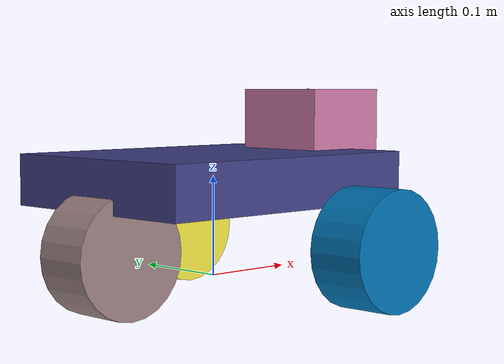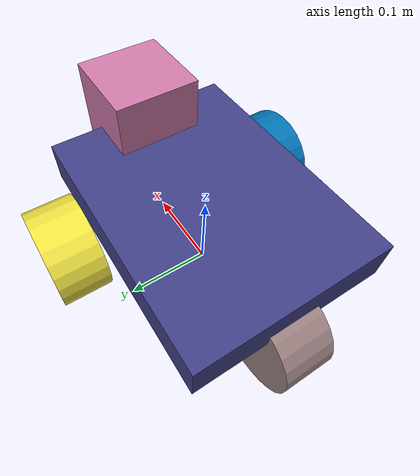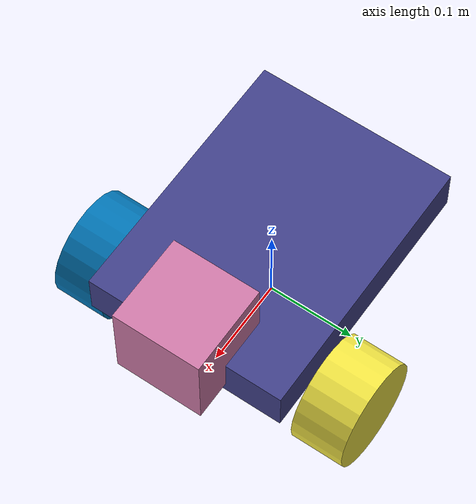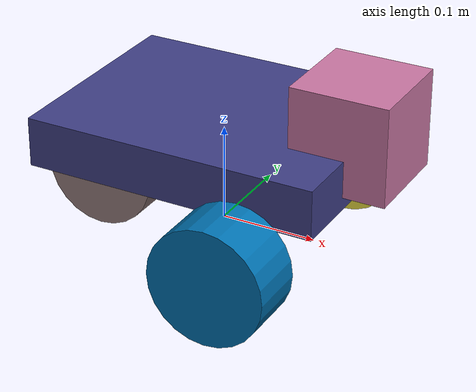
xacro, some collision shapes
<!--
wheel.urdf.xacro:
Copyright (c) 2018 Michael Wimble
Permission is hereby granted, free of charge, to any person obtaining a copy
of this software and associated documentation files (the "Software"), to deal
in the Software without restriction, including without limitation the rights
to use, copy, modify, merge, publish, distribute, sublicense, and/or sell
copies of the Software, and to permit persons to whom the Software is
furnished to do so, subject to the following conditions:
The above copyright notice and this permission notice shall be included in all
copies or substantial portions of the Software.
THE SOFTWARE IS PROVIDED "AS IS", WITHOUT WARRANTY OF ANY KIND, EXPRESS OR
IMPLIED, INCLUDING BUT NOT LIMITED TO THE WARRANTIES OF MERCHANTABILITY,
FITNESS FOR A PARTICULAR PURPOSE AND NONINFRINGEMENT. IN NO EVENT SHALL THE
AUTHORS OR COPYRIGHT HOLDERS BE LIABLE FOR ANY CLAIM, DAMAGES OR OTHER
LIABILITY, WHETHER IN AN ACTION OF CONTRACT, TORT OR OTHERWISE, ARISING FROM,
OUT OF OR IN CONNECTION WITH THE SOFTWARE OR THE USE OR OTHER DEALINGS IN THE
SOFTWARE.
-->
<?xml version="1.0"?>
<robot xmlns:xacro="http://ros.org/wiki/xacro" name="nadie">

  <xacro:arg name="robot_namespace" default="/nadie" />

  <xacro:include filename="$(find nadie_control)/urdf/caster.urdf.xacro" />
  <xacro:include filename="$(find nadie_control)/urdf/wheel.urdf.xacro" />
  <!--xacro:include filename="$(find nadie_control)/urdf/lidar_sim.xacro" /-->

  <xacro:property name="M_PI" value="3.14159"/>
  <xacro:property name="wheel_vertical_offset" value="0.03282" />

  <xacro:property name="body_height" value="0.0508" />
  <xacro:property name="body_length" value="0.3048" />
  <xacro:property name="body_width" value="0.2286" />
  <xacro:property name="fwheel_offset" value="-0.13" />
  <xacro:property name="wheel_forward_of_center_distance" value=".0762" />
  <xacro:property name="motor_height" value="0.0254" />
  <xacro:property name="lidar_height" value="0.015" />
  <xacro:property name="lidar_length" value="0.045" />
  <xacro:property name="lidar_width" value="0.015" />
  <xacro:property name="wheel_radius" value="0.06" />
  <xacro:property name="wheel_spacer" value="0.00254" />
  <xacro:property name="wheel_width" value="0.060" />
  <xacro:property name="body_center_height" value="${wheel_radius+(motor_height/2)+(body_height/2)}" />

  <xacro:property name="lidar_x_offset" value="${(body_length/2)-(lidar_width/2)}" />
  <xacro:property name="lidar_z_offset" value="${body_center_height+(body_height/2)+(lidar_height/2)+.00508}" />

  <material name="base">
    <color rgba="0.25 0.25 0.53 1" />>
  </material>

  <material name="wheel">
    <color rgba="0.6 0.5 0.5 1" />
  </material>

  <!--xacro:include filename="$(find m1)/robots/m1.gazebo" /-->
  <gazebo>
    <plugin name="gazebo_ros_control" filename="libgazebo_ros_control.so">
      <!-- controlPeriod defaults to parent_model_->GetWorld()->Physics()->GetMaxStepSize() -->
      <!-- eStopTopic if specified, subscribe to this topic and capture 'data' value -->
      <legacyModeNS>false</legacyModeNS> <!-- If using DefaultRobotHWSim, set this to "true" to fix namespace issue -->
      <robotNamespace>$(arg robot_namespace)</robotNamespace> <!-- parent_model_->GetName() -->
      <!-- robot_description -->
      <!-- gazebo_ros_control/DefaultRobotHWSim, which becomes the controller manager -->
    </plugin>

  </gazebo>

  <!-- Parts -->
  <link name="base_link">
    <collision>
      <geometry>
        <box size="${body_length} ${body_width} 0.0508"/>
      </geometry>
      <origin rpy="0 0 0" xyz="0 0 ${body_center_height}"/>
    </collision>
    <visual>
      <geometry>
        <box size="${body_length} ${body_width} 0.0508"/>
      </geometry>
      <material name="base" />
      <origin rpy="0 0 0" xyz="0 0 ${body_center_height}"/>
    </visual>
    <inertial>
        <origin xyz="0 0 0" rpy="0 0 0" />
        <mass value="1" />
        <inertia
          ixx="1.0" ixy="0.0" ixz="0.0"
          iyy="1.0" iyz="0.0"
          izz="1.0" />
    </inertial>
  </link>

  <!-- Base footprint is on the ground under the robot -->
  <link name="base_footprint"/>

  <joint name="base_footprint_joint" type="fixed">
    <origin xyz="0 0 ${wheel_vertical_offset - wheel_radius}" rpy="0 0 0" />
    <parent link="base_link" />
    <child link="base_footprint" />
  </joint>

  <!-- Interial link stores the robot's inertial information -->
  <link name="inertial_link">
    <inertial>
      <mass value="46.034" />
      <origin xyz="-0.00065 -0.085 0.062" />
      <inertia ixx="0.6022" ixy="-0.02364" ixz="-0.1197" iyy="1.7386" iyz="-0.001544" izz="2.0296" />
    </inertial>
  </link>

  <joint name="inertial_joint" type="fixed">
    <origin xyz="0 0 0" rpy="0 0 0" />
    <parent link="base_link" />
    <child link="inertial_link" />
  </joint>

  <xacro:wheel wheel_prefix="front_left">
    <origin xyz="${wheel_forward_of_center_distance} ${(body_width/2)+wheel_spacer+(wheel_width/2)} ${wheel_vertical_offset}" rpy="0 0 0" />
  </xacro:wheel>
  <xacro:wheel wheel_prefix="front_right">
    <origin xyz="${wheel_forward_of_center_distance} -${(body_width/2)+wheel_spacer+(wheel_width/2)} ${wheel_vertical_offset}" rpy="0 0 0" />
  </xacro:wheel>
  <xacro:caster wheel_prefix="caster">
    <origin xyz="${fwheel_offset} 0 ${wheel_vertical_offset}" rpy="0 0 0" />
  </xacro:caster>

  <!-- Hokuyo Laser -->
  <link name="hokuyo_link">
    <collision>
      <origin xyz="0 0 0" rpy="0 0 0"/>
      <geometry>
        <box size="0.1 0.1 0.1"/>
      </geometry>
    </collision>

    <visual>
      <origin xyz="0 0 0" rpy="0 0 0"/>
      <geometry>
        <mesh filename="package://nadie_control/meshes/hokuyo.dae"/>
      </geometry>
    </visual>

    <inertial>
      <mass value="1e-5" />
      <origin xyz="0 0 0" rpy="0 0 0"/>
      <inertia ixx="1e-6" ixy="0" ixz="0" iyy="1e-6" iyz="0" izz="1e-6" />
    </inertial>
  </link>

  <joint name="hokuyo_joint" type="fixed">
    <axis xyz="0 1 0" />
    <origin xyz="${lidar_x_offset} 0 ${lidar_z_offset}" rpy="0 0 0"/>
    <parent link="base_link"/>
    <child link="hokuyo_link"/>
  </joint>

  <gazebo reference="hokuyo_link">
    <sensor type="ray" name="head_hokuyo_sensor">
      <pose>0 0 0 0 0 0</pose>
      <visualize>true</visualize>
      <update_rate>7</update_rate>
      <ray>
        <scan>
          <horizontal>
            <samples>360</samples>
            <resolution>1</resolution>
            <min_angle>-3.14159</min_angle>
            <max_angle>3.14159</max_angle>
          </horizontal>
        </scan>
        <range>
          <min>0.10</min>
          <max>10.0</max>
          <resolution>0.01</resolution>
        </range>
        <noise>
          <type>gaussian</type>
          <mean>0.0</mean>
          <stddev>0.01</stddev>
        </noise>
      </ray>
      <plugin name="gazebo_ros_head_hokuyo_controller" filename="libgazebo_ros_laser.so">
        <alwaysOn>false</alwaysOn>
        <topicName>/scan</topicName>
        <frameName>hokuyo_link</frameName>
      </plugin>
    </sensor>
  </gazebo>

</robot>

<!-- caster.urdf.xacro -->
<robot xmlns:xacro="http://ros.org/wiki/xacro" name="caster">

	<xacro:macro name="caster" params="wheel_prefix *joint_pose">
		<link name="${wheel_prefix}_wheel_link">
			<inertial>
				<mass value="0.01" />
				<origin xyz="0 0 0" />
				<inertia  ixx="0.02467" ixy="0" ixz="0" iyy="0.04411" iyz="0" izz="0.02467" />
			</inertial>
			<visual>
				<origin xyz="0 0 0" rpy="${M_PI/2} 0 0" />
				<geometry>
			        <cylinder length="${wheel_width}" radius="${wheel_radius}" />
				</geometry>
		        <material name="wheel" />
			</visual>
			<collision>
				<origin xyz="0 0 0" rpy="${M_PI/2} 0 0" />
				<geometry>
			        <cylinder length="${wheel_width}" radius="${wheel_radius}" />
				</geometry>
			</collision>
		</link>

		<gazebo reference="${wheel_prefix}_wheel_link">
		</gazebo>

		<joint name="${wheel_prefix}_wheel" type="fixed">
			<parent link="base_link"/>
			<child link="${wheel_prefix}_wheel_link"/>
			<xacro:insert_block name="joint_pose"/>
			<!--axis xyz="0 1 0" rpy="0 0 0" /-->
		</joint>
	</xacro:macro>
</robot>

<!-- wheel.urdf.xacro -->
<robot xmlns:xacro="http://ros.org/wiki/xacro" name="wheel">

	<xacro:macro name="wheel" params="wheel_prefix *joint_pose">
		<link name="${wheel_prefix}_wheel_link">
			<inertial>
				<mass value="2.637" />
				<origin xyz="0 0 0" />
				<inertia  ixx="0.02467" ixy="0" ixz="0" iyy="0.04411" iyz="0" izz="0.02467" />
			</inertial>
			<visual>
				<origin xyz="0 0 0" rpy="${M_PI/2} 0 0" />
				<geometry>
			        <cylinder length="${wheel_width}" radius="${wheel_radius}" />
					<!--mesh filename="package://husky_description/meshes/wheel.dae" /-->
				</geometry>
			</visual>
			<collision>
				<origin xyz="0 0 0" rpy="${M_PI/2} 0 0" />
				<geometry>
			        <cylinder length="${wheel_width}" radius="${wheel_radius}" />
				</geometry>
			</collision>
		</link>

		<gazebo reference="${wheel_prefix}_wheel_link">
			<mu1 value="1.0"/>
			<mu2 value="1.0"/>
			<kp value="10000000.0" />
			<kd value="1.0" />
			<fdir1 value="1 0 0"/>
		</gazebo>

		<joint name="${wheel_prefix}_wheel" type="continuous">
			<parent link="base_link"/>
			<child link="${wheel_prefix}_wheel_link"/>
			<xacro:insert_block name="joint_pose"/>
			<axis xyz="0 1 0" rpy="0 0 0" />
		    <limit effort="100" velocity="100"/>
		    <joint_properties damping="0.0" friction="0.0"/>
		</joint>

		<transmission name="${wheel_prefix}_wheel_trans" type="SimpleTransmission">
			<type>transmission_interface/SimpleTransmission</type>
			<actuator name="${wheel_prefix}_wheel_motor">
				<mechanicalReduction>1</mechanicalReduction>
			</actuator>
			<joint name="${wheel_prefix}_wheel">
				<hardwareInterface>hardware_interface/VelocityJointInterface</hardwareInterface>
			</joint>
		</transmission>

	</xacro:macro>

</robot>
